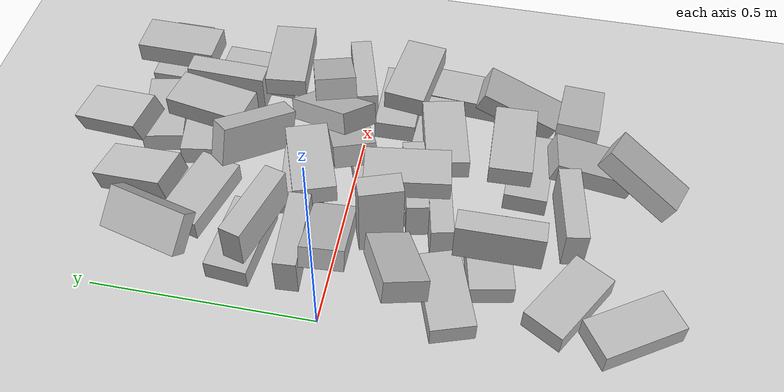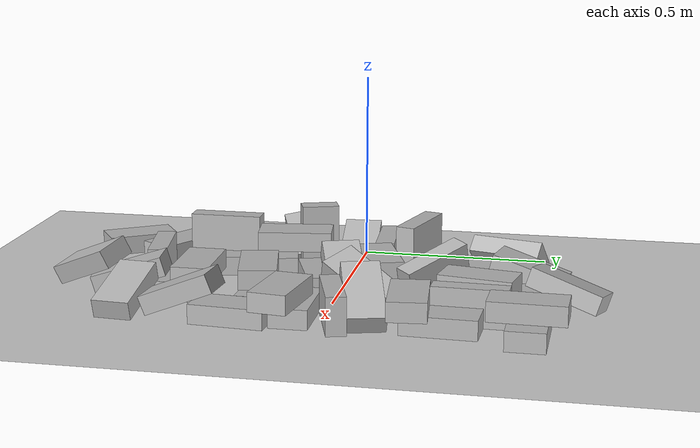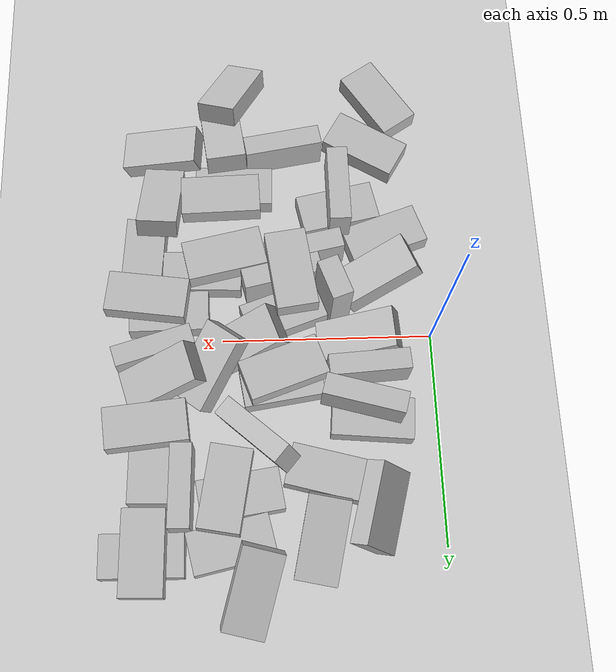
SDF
<sdf version="1.6">
 <world name="default">
  <model name="ground_plane">
   <static>1</static>
   <link name="link">
    <collision name="collision">
     <geometry><plane><normal>0 0 1</normal><size>100 100</size></plane></geometry>
     <surface>
      <contact><collide_bitmask>65535</collide_bitmask></contact>
      <friction><ode><mu>100</mu><mu2>50</mu2></ode></friction>
     </surface>
    </collision>
    <visual name="visual">
     <cast_shadows>0</cast_shadows>
     <geometry><plane><normal>0 0 1</normal><size>100 100</size></plane></geometry>
     <material>
      <script><uri>file://media/materials/scripts/gazebo.material</uri><name>Gazebo/Grey</name></script>
     </material>
    </visual>
   </link>
  </model>
  <model name="dbrick_clone_2">
   <static>0</static>
   <self_collide>1</self_collide>
   <link name="link">
    <inertial>
     <mass>2</mass>
     <inertia>
      <ixx>0.0198483</ixx>
      <ixy>0</ixy>
      <ixz>0</ixz>
      <iyy>0.0643333</iyy>
      <iyz>0</iyz>
      <izz>0.0758483</izz>
     </inertia>
    </inertial>
    <collision name="dbrickC"><geometry><box><size>0.19 0.05 0.097</size></box></geometry></collision>
    <visual name="dbrickV">
     <cast_shadows>0</cast_shadows>
     <geometry><box><size>0.19 0.05 0.097</size></box></geometry>
     <material>
      <script>
       <uri>model://dbrick/materials/scripts</uri>
       <uri>model://dbrick/materials/textures</uri>
       <name>vrc/dbrick</name>
      </script>
     </material>
    </visual>
    <self_collide>1</self_collide>
   </link>
   <pose>0.299765 -0.209694 0.0485 -4e-06 1e-06 0.200864</pose>
  </model>
  <model name="dbrick_clone_9">
   <static>0</static>
   <self_collide>1</self_collide>
   <link name="link">
    <inertial>
     <mass>2</mass>
     <inertia>
      <ixx>0.0198483</ixx>
      <ixy>0</ixy>
      <ixz>0</ixz>
      <iyy>0.0643333</iyy>
      <iyz>0</iyz>
      <izz>0.0758483</izz>
     </inertia>
    </inertial>
    <collision name="dbrickC"><geometry><box><size>0.19 0.05 0.097</size></box></geometry></collision>
    <visual name="dbrickV">
     <cast_shadows>0</cast_shadows>
     <geometry><box><size>0.19 0.05 0.097</size></box></geometry>
     <material>
      <script>
       <uri>model://dbrick/materials/scripts</uri>
       <uri>model://dbrick/materials/textures</uri>
       <name>vrc/dbrick</name>
      </script>
     </material>
    </visual>
    <self_collide>1</self_collide>
   </link>
   <pose>0.342479 -0.494706 0.0485 0 -0 0.163884</pose>
  </model>
  <model name="dbrick_clone_10_clone_3">
   <static>0</static>
   <self_collide>1</self_collide>
   <link name="link">
    <inertial>
     <mass>2</mass>
     <inertia>
      <ixx>0.0198483</ixx>
      <ixy>0</ixy>
      <ixz>0</ixz>
      <iyy>0.0643333</iyy>
      <iyz>0</iyz>
      <izz>0.0758483</izz>
     </inertia>
    </inertial>
    <collision name="dbrickC"><geometry><box><size>0.19 0.05 0.097</size></box></geometry></collision>
    <visual name="dbrickV">
     <cast_shadows>0</cast_shadows>
     <geometry><box><size>0.19 0.05 0.097</size></box></geometry>
     <material>
      <script>
       <uri>model://dbrick/materials/scripts</uri>
       <uri>model://dbrick/materials/textures</uri>
       <name>vrc/dbrick</name>
      </script>
     </material>
    </visual>
    <self_collide>1</self_collide>
   </link>
   <pose>0.154282 0.204825 0.025 -1.57079 -0 -0.08803</pose>
  </model>
  <model name="dbrick_clone_10_clone_6_clone">
   <static>0</static>
   <self_collide>1</self_collide>
   <link name="link">
    <inertial>
     <mass>2</mass>
     <inertia>
      <ixx>0.0198483</ixx>
      <ixy>0</ixy>
      <ixz>0</ixz>
      <iyy>0.0643333</iyy>
      <iyz>0</iyz>
      <izz>0.0758483</izz>
     </inertia>
    </inertial>
    <collision name="dbrickC"><geometry><box><size>0.19 0.05 0.097</size></box></geometry></collision>
    <visual name="dbrickV">
     <cast_shadows>0</cast_shadows>
     <geometry><box><size>0.19 0.05 0.097</size></box></geometry>
     <material>
      <script>
       <uri>model://dbrick/materials/scripts</uri>
       <uri>model://dbrick/materials/textures</uri>
       <name>vrc/dbrick</name>
      </script>
     </material>
    </visual>
    <self_collide>1</self_collide>
   </link>
   <pose>0.158145 0.086479 0.048471 2e-06 -1e-06 0.064436</pose>
  </model>
  <model name="dbrick_clone_10_clone_6_clone_0">
   <static>0</static>
   <self_collide>1</self_collide>
   <link name="link">
    <inertial>
     <mass>2</mass>
     <inertia>
      <ixx>0.0198483</ixx>
      <ixy>0</ixy>
      <ixz>0</ixz>
      <iyy>0.0643333</iyy>
      <iyz>0</iyz>
      <izz>0.0758483</izz>
     </inertia>
    </inertial>
    <collision name="dbrickC"><geometry><box><size>0.19 0.05 0.097</size></box></geometry></collision>
    <visual name="dbrickV">
     <cast_shadows>0</cast_shadows>
     <geometry><box><size>0.19 0.05 0.097</size></box></geometry>
     <material>
      <script>
       <uri>model://dbrick/materials/scripts</uri>
       <uri>model://dbrick/materials/textures</uri>
       <name>vrc/dbrick</name>
      </script>
     </material>
    </visual>
    <self_collide>1</self_collide>
   </link>
   <pose>0.261087 0.331677 0.024857 -1.5708 0.000137 -0.261447</pose>
  </model>
  <model name="dbrick_clone_10_clone_6_clone_1">
   <static>0</static>
   <self_collide>1</self_collide>
   <link name="link">
    <inertial>
     <mass>2</mass>
     <inertia>
      <ixx>0.0198483</ixx>
      <ixy>0</ixy>
      <ixz>0</ixz>
      <iyy>0.0643333</iyy>
      <iyz>0</iyz>
      <izz>0.0758483</izz>
     </inertia>
    </inertial>
    <collision name="dbrickC"><geometry><box><size>0.19 0.05 0.097</size></box></geometry></collision>
    <visual name="dbrickV">
     <cast_shadows>0</cast_shadows>
     <geometry><box><size>0.19 0.05 0.097</size></box></geometry>
     <material>
      <script>
       <uri>model://dbrick/materials/scripts</uri>
       <uri>model://dbrick/materials/textures</uri>
       <name>vrc/dbrick</name>
      </script>
     </material>
    </visual>
    <self_collide>1</self_collide>
   </link>
   <pose>0.09986 -0.252551 0.024997 1.5708 2.9e-05 0.324917</pose>
  </model>
  <model name="dbrick_clone_10_clone_6_clone_1_clone_0">
   <static>0</static>
   <self_collide>1</self_collide>
   <link name="link">
    <inertial>
     <mass>2</mass>
     <inertia>
      <ixx>0.0198483</ixx>
      <ixy>0</ixy>
      <ixz>0</ixz>
      <iyy>0.0643333</iyy>
      <iyz>0</iyz>
      <izz>0.0758483</izz>
     </inertia>
    </inertial>
    <collision name="dbrickC"><geometry><box><size>0.19 0.05 0.097</size></box></geometry></collision>
    <visual name="dbrickV">
     <cast_shadows>0</cast_shadows>
     <geometry><box><size>0.19 0.05 0.097</size></box></geometry>
     <material>
      <script>
       <uri>model://dbrick/materials/scripts</uri>
       <uri>model://dbrick/materials/textures</uri>
       <name>vrc/dbrick</name>
      </script>
     </material>
    </visual>
    <self_collide>1</self_collide>
   </link>
   <pose>0.354362 -0.145673 0.048498 -3.14158 -2e-05 0.220302</pose>
  </model>
  <model name="dbrick_clone_10_clone_6_clone_1_clone_1">
   <static>0</static>
   <self_collide>1</self_collide>
   <link name="link">
    <inertial>
     <mass>2</mass>
     <inertia>
      <ixx>0.0198483</ixx>
      <ixy>0</ixy>
      <ixz>0</ixz>
      <iyy>0.0643333</iyy>
      <iyz>0</iyz>
      <izz>0.0758483</izz>
     </inertia>
    </inertial>
    <collision name="dbrickC"><geometry><box><size>0.19 0.05 0.097</size></box></geometry></collision>
    <visual name="dbrickV">
     <cast_shadows>0</cast_shadows>
     <geometry><box><size>0.19 0.05 0.097</size></box></geometry>
     <material>
      <script>
       <uri>model://dbrick/materials/scripts</uri>
       <uri>model://dbrick/materials/textures</uri>
       <name>vrc/dbrick</name>
      </script>
     </material>
    </visual>
    <self_collide>1</self_collide>
   </link>
   <pose>0.125402 -0.142849 0.065373 1.74398 0.373455 0.402562</pose>
  </model>
  <model name="dbrick_clone_10_clone_6_clone_1_clone_2">
   <static>0</static>
   <self_collide>1</self_collide>
   <link name="link">
    <inertial>
     <mass>2</mass>
     <inertia>
      <ixx>0.0198483</ixx>
      <ixy>0</ixy>
      <ixz>0</ixz>
      <iyy>0.0643333</iyy>
      <iyz>0</iyz>
      <izz>0.0758483</izz>
     </inertia>
    </inertial>
    <collision name="dbrickC"><geometry><box><size>0.19 0.05 0.097</size></box></geometry></collision>
    <visual name="dbrickV">
     <cast_shadows>0</cast_shadows>
     <geometry><box><size>0.19 0.05 0.097</size></box></geometry>
     <material>
      <script>
       <uri>model://dbrick/materials/scripts</uri>
       <uri>model://dbrick/materials/textures</uri>
       <name>vrc/dbrick</name>
      </script>
     </material>
    </visual>
    <self_collide>1</self_collide>
   </link>
   <pose>0.210105 -0.329515 0.025 1.5708 0 0.203738</pose>
  </model>
  <model name="dbrick_clone_10_clone_6_clone_1_clone_3">
   <static>0</static>
   <self_collide>1</self_collide>
   <link name="link">
    <inertial>
     <mass>2</mass>
     <inertia>
      <ixx>0.0198483</ixx>
      <ixy>0</ixy>
      <ixz>0</ixz>
      <iyy>0.0643333</iyy>
      <iyz>0</iyz>
      <izz>0.0758483</izz>
     </inertia>
    </inertial>
    <collision name="dbrickC"><geometry><box><size>0.19 0.05 0.097</size></box></geometry></collision>
    <visual name="dbrickV">
     <cast_shadows>0</cast_shadows>
     <geometry><box><size>0.19 0.05 0.097</size></box></geometry>
     <material>
      <script>
       <uri>model://dbrick/materials/scripts</uri>
       <uri>model://dbrick/materials/textures</uri>
       <name>vrc/dbrick</name>
      </script>
     </material>
    </visual>
    <self_collide>1</self_collide>
   </link>
   <pose>0.178595 0.014141 0.059911 1.57079 0.398828 0.064411</pose>
  </model>
  <model name="dbrick_clone_10_clone_6_clone_1_clone_4">
   <static>0</static>
   <self_collide>1</self_collide>
   <link name="link">
    <inertial>
     <mass>2</mass>
     <inertia>
      <ixx>0.0198483</ixx>
      <ixy>0</ixy>
      <ixz>0</ixz>
      <iyy>0.0643333</iyy>
      <iyz>0</iyz>
      <izz>0.0758483</izz>
     </inertia>
    </inertial>
    <collision name="dbrickC"><geometry><box><size>0.19 0.05 0.097</size></box></geometry></collision>
    <visual name="dbrickV">
     <cast_shadows>0</cast_shadows>
     <geometry><box><size>0.19 0.05 0.097</size></box></geometry>
     <material>
      <script>
       <uri>model://dbrick/materials/scripts</uri>
       <uri>model://dbrick/materials/textures</uri>
       <name>vrc/dbrick</name>
      </script>
     </material>
    </visual>
    <self_collide>1</self_collide>
   </link>
   <pose>0.353139 -0.05945 0.025001 1.57084 1.6e-05 0.338845</pose>
  </model>
  <model name="dbrick_clone_10_clone_6_clone_1_clone_5">
   <static>0</static>
   <self_collide>1</self_collide>
   <link name="link">
    <inertial>
     <mass>2</mass>
     <inertia>
      <ixx>0.0198483</ixx>
      <ixy>0</ixy>
      <ixz>0</ixz>
      <iyy>0.0643333</iyy>
      <iyz>0</iyz>
      <izz>0.0758483</izz>
     </inertia>
    </inertial>
    <collision name="dbrickC"><geometry><box><size>0.19 0.05 0.097</size></box></geometry></collision>
    <visual name="dbrickV">
     <cast_shadows>0</cast_shadows>
     <geometry><box><size>0.19 0.05 0.097</size></box></geometry>
     <material>
      <script>
       <uri>model://dbrick/materials/scripts</uri>
       <uri>model://dbrick/materials/textures</uri>
       <name>vrc/dbrick</name>
      </script>
     </material>
    </visual>
    <self_collide>1</self_collide>
   </link>
   <pose>0.361903 0.113562 0.024998 1.57083 -0 0.151408</pose>
  </model>
  <model name="dbrick_clone_clone">
   <static>0</static>
   <self_collide>1</self_collide>
   <link name="link">
    <inertial>
     <mass>2</mass>
     <inertia>
      <ixx>0.0198483</ixx>
      <ixy>0</ixy>
      <ixz>0</ixz>
      <iyy>0.0643333</iyy>
      <iyz>0</iyz>
      <izz>0.0758483</izz>
     </inertia>
    </inertial>
    <collision name="dbrickC"><geometry><box><size>0.19 0.05 0.097</size></box></geometry></collision>
    <visual name="dbrickV">
     <cast_shadows>0</cast_shadows>
     <geometry><box><size>0.19 0.05 0.097</size></box></geometry>
     <material>
      <script>
       <uri>model://dbrick/materials/scripts</uri>
       <uri>model://dbrick/materials/textures</uri>
       <name>vrc/dbrick</name>
      </script>
     </material>
    </visual>
    <self_collide>1</self_collide>
   </link>
   <pose>0.177164 0.174103 0.098498 3.3e-05 -1.9e-05 -0.271425</pose>
  </model>
  <model name="dbrick_clone_10_clone_6_clone_1_clone_clone">
   <static>0</static>
   <self_collide>1</self_collide>
   <link name="link">
    <inertial>
     <mass>2</mass>
     <inertia>
      <ixx>0.0198483</ixx>
      <ixy>0</ixy>
      <ixz>0</ixz>
      <iyy>0.0643333</iyy>
      <iyz>0</iyz>
      <izz>0.0758483</izz>
     </inertia>
    </inertial>
    <collision name="dbrickC"><geometry><box><size>0.19 0.05 0.097</size></box></geometry></collision>
    <visual name="dbrickV">
     <cast_shadows>0</cast_shadows>
     <geometry><box><size>0.19 0.05 0.097</size></box></geometry>
     <material>
      <script>
       <uri>model://dbrick/materials/scripts</uri>
       <uri>model://dbrick/materials/textures</uri>
       <name>vrc/dbrick</name>
      </script>
     </material>
    </visual>
    <self_collide>1</self_collide>
   </link>
   <pose>0.235621 -0.087015 0.095 -1.36001 1.57079 -2.59197</pose>
  </model>
  <model name="dbrick_clone_10_clone_6_clone_1_clone_clone_0">
   <static>0</static>
   <self_collide>1</self_collide>
   <link name="link">
    <inertial>
     <mass>2</mass>
     <inertia>
      <ixx>0.0198483</ixx>
      <ixy>0</ixy>
      <ixz>0</ixz>
      <iyy>0.0643333</iyy>
      <iyz>0</iyz>
      <izz>0.0758483</izz>
     </inertia>
    </inertial>
    <collision name="dbrickC"><geometry><box><size>0.19 0.05 0.097</size></box></geometry></collision>
    <visual name="dbrickV">
     <cast_shadows>0</cast_shadows>
     <geometry><box><size>0.19 0.05 0.097</size></box></geometry>
     <material>
      <script>
       <uri>model://dbrick/materials/scripts</uri>
       <uri>model://dbrick/materials/textures</uri>
       <name>vrc/dbrick</name>
      </script>
     </material>
    </visual>
    <self_collide>1</self_collide>
   </link>
   <pose>0.333674 -0.129743 0.122005 -1.57072 -0.000911 -1.43258</pose>
  </model>
  <model name="dbrick_clone_10_clone_6_clone_1_clone_clone_4">
   <static>0</static>
   <self_collide>1</self_collide>
   <link name="link">
    <inertial>
     <mass>2</mass>
     <inertia>
      <ixx>0.0198483</ixx>
      <ixy>0</ixy>
      <ixz>0</ixz>
      <iyy>0.0643333</iyy>
      <iyz>0</iyz>
      <izz>0.0758483</izz>
     </inertia>
    </inertial>
    <collision name="dbrickC"><geometry><box><size>0.19 0.05 0.097</size></box></geometry></collision>
    <visual name="dbrickV">
     <cast_shadows>0</cast_shadows>
     <geometry><box><size>0.19 0.05 0.097</size></box></geometry>
     <material>
      <script>
       <uri>model://dbrick/materials/scripts</uri>
       <uri>model://dbrick/materials/textures</uri>
       <name>vrc/dbrick</name>
      </script>
     </material>
    </visual>
    <self_collide>1</self_collide>
   </link>
   <pose>0.490499 -0.192162 0.075001 1.57084 -3e-06 0.20945</pose>
  </model>
  <model name="dbrick_clone_10_clone_6_clone_1_clone_clone_5">
   <static>0</static>
   <self_collide>1</self_collide>
   <link name="link">
    <inertial>
     <mass>2</mass>
     <inertia>
      <ixx>0.0198483</ixx>
      <ixy>0</ixy>
      <ixz>0</ixz>
      <iyy>0.0643333</iyy>
      <iyz>0</iyz>
      <izz>0.0758483</izz>
     </inertia>
    </inertial>
    <collision name="dbrickC"><geometry><box><size>0.19 0.05 0.097</size></box></geometry></collision>
    <visual name="dbrickV">
     <cast_shadows>0</cast_shadows>
     <geometry><box><size>0.19 0.05 0.097</size></box></geometry>
     <material>
      <script>
       <uri>model://dbrick/materials/scripts</uri>
       <uri>model://dbrick/materials/textures</uri>
       <name>vrc/dbrick</name>
      </script>
     </material>
    </visual>
    <self_collide>1</self_collide>
   </link>
   <pose>0.639553 0.103845 0.068217 1.57077 0.510314 0.285097</pose>
  </model>
  <model name="dbrick_clone_14_clone">
   <static>0</static>
   <self_collide>1</self_collide>
   <link name="link">
    <inertial>
     <mass>2</mass>
     <inertia>
      <ixx>0.0198483</ixx>
      <ixy>0</ixy>
      <ixz>0</ixz>
      <iyy>0.0643333</iyy>
      <iyz>0</iyz>
      <izz>0.0758483</izz>
     </inertia>
    </inertial>
    <collision name="dbrickC"><geometry><box><size>0.19 0.05 0.097</size></box></geometry></collision>
    <visual name="dbrickV">
     <cast_shadows>0</cast_shadows>
     <geometry><box><size>0.19 0.05 0.097</size></box></geometry>
     <material>
      <script>
       <uri>model://dbrick/materials/scripts</uri>
       <uri>model://dbrick/materials/textures</uri>
       <name>vrc/dbrick</name>
      </script>
     </material>
    </visual>
    <self_collide>1</self_collide>
   </link>
   <pose>0.626777 -0.065599 0.025002 -1.57078 1.2e-05 -3.13012</pose>
  </model>
  <model name="dbrick_clone_14_clone_3">
   <static>0</static>
   <self_collide>1</self_collide>
   <link name="link">
    <inertial>
     <mass>2</mass>
     <inertia>
      <ixx>0.0198483</ixx>
      <ixy>0</ixy>
      <ixz>0</ixz>
      <iyy>0.0643333</iyy>
      <iyz>0</iyz>
      <izz>0.0758483</izz>
     </inertia>
    </inertial>
    <collision name="dbrickC"><geometry><box><size>0.19 0.05 0.097</size></box></geometry></collision>
    <visual name="dbrickV">
     <cast_shadows>0</cast_shadows>
     <geometry><box><size>0.19 0.05 0.097</size></box></geometry>
     <material>
      <script>
       <uri>model://dbrick/materials/scripts</uri>
       <uri>model://dbrick/materials/textures</uri>
       <name>vrc/dbrick</name>
      </script>
     </material>
    </visual>
    <self_collide>1</self_collide>
   </link>
   <pose>0.282232 0.47855 0.049303 -1.57113 -0.268681 -1.7835</pose>
  </model>
  <model name="dbrick_clone_14_clone_4">
   <static>0</static>
   <self_collide>1</self_collide>
   <link name="link">
    <inertial>
     <mass>2</mass>
     <inertia>
      <ixx>0.0198483</ixx>
      <ixy>0</ixy>
      <ixz>0</ixz>
      <iyy>0.0643333</iyy>
      <iyz>0</iyz>
      <izz>0.0758483</izz>
     </inertia>
    </inertial>
    <collision name="dbrickC"><geometry><box><size>0.19 0.05 0.097</size></box></geometry></collision>
    <visual name="dbrickV">
     <cast_shadows>0</cast_shadows>
     <geometry><box><size>0.19 0.05 0.097</size></box></geometry>
     <material>
      <script>
       <uri>model://dbrick/materials/scripts</uri>
       <uri>model://dbrick/materials/textures</uri>
       <name>vrc/dbrick</name>
      </script>
     </material>
    </visual>
    <self_collide>1</self_collide>
   </link>
   <pose>0.421123 0.246138 0.075047 -0.145107 0.26852 -0.764897</pose>
  </model>
  <model name="dbrick_clone_14_clone_5">
   <static>0</static>
   <self_collide>1</self_collide>
   <link name="link">
    <inertial>
     <mass>2</mass>
     <inertia>
      <ixx>0.0198483</ixx>
      <ixy>0</ixy>
      <ixz>0</ixz>
      <iyy>0.0643333</iyy>
      <iyz>0</iyz>
      <izz>0.0758483</izz>
     </inertia>
    </inertial>
    <collision name="dbrickC"><geometry><box><size>0.19 0.05 0.097</size></box></geometry></collision>
    <visual name="dbrickV">
     <cast_shadows>0</cast_shadows>
     <geometry><box><size>0.19 0.05 0.097</size></box></geometry>
     <material>
      <script>
       <uri>model://dbrick/materials/scripts</uri>
       <uri>model://dbrick/materials/textures</uri>
       <name>vrc/dbrick</name>
      </script>
     </material>
    </visual>
    <self_collide>1</self_collide>
   </link>
   <pose>0.595923 0.358489 0.0485 3.14159 -0 -1.60241</pose>
  </model>
  <model name="dbrick_clone_14_clone_7">
   <static>0</static>
   <self_collide>1</self_collide>
   <link name="link">
    <inertial>
     <mass>2</mass>
     <inertia>
      <ixx>0.0198483</ixx>
      <ixy>0</ixy>
      <ixz>0</ixz>
      <iyy>0.0643333</iyy>
      <iyz>0</iyz>
      <izz>0.0758483</izz>
     </inertia>
    </inertial>
    <collision name="dbrickC"><geometry><box><size>0.19 0.05 0.097</size></box></geometry></collision>
    <visual name="dbrickV">
     <cast_shadows>0</cast_shadows>
     <geometry><box><size>0.19 0.05 0.097</size></box></geometry>
     <material>
      <script>
       <uri>model://dbrick/materials/scripts</uri>
       <uri>model://dbrick/materials/textures</uri>
       <name>vrc/dbrick</name>
      </script>
     </material>
    </visual>
    <self_collide>1</self_collide>
   </link>
   <pose>0.688918 -0.212216 0.025 -1.5708 1e-06 -1.64546</pose>
  </model>
  <model name="dbrick_clone_13_clone_11">
   <static>0</static>
   <self_collide>1</self_collide>
   <link name="link">
    <inertial>
     <mass>2</mass>
     <inertia>
      <ixx>0.0198483</ixx>
      <ixy>0</ixy>
      <ixz>0</ixz>
      <iyy>0.0643333</iyy>
      <iyz>0</iyz>
      <izz>0.0758483</izz>
     </inertia>
    </inertial>
    <collision name="dbrickC"><geometry><box><size>0.19 0.05 0.097</size></box></geometry></collision>
    <visual name="dbrickV">
     <cast_shadows>0</cast_shadows>
     <geometry><box><size>0.19 0.05 0.097</size></box></geometry>
     <material>
      <script>
       <uri>model://dbrick/materials/scripts</uri>
       <uri>model://dbrick/materials/textures</uri>
       <name>vrc/dbrick</name>
      </script>
     </material>
    </visual>
    <self_collide>1</self_collide>
   </link>
   <pose>0.463666 0.376538 0.025001 -1.57078 -0 0.149483</pose>
  </model>
  <model name="dbrick_clone_13_clone_12">
   <static>0</static>
   <self_collide>1</self_collide>
   <link name="link">
    <inertial>
     <mass>2</mass>
     <inertia>
      <ixx>0.0198483</ixx>
      <ixy>0</ixy>
      <ixz>0</ixz>
      <iyy>0.0643333</iyy>
      <iyz>0</iyz>
      <izz>0.0758483</izz>
     </inertia>
    </inertial>
    <collision name="dbrickC"><geometry><box><size>0.19 0.05 0.097</size></box></geometry></collision>
    <visual name="dbrickV">
     <cast_shadows>0</cast_shadows>
     <geometry><box><size>0.19 0.05 0.097</size></box></geometry>
     <material>
      <script>
       <uri>model://dbrick/materials/scripts</uri>
       <uri>model://dbrick/materials/textures</uri>
       <name>vrc/dbrick</name>
      </script>
     </material>
    </visual>
    <self_collide>1</self_collide>
   </link>
   <pose>0.466486 -0.395499 0.024998 -1.57077 -7e-06 -0.036032</pose>
  </model>
  <model name="dbrick_clone_13_clone_9_clone_7">
   <static>0</static>
   <self_collide>1</self_collide>
   <link name="link">
    <inertial>
     <mass>2</mass>
     <inertia>
      <ixx>0.0198483</ixx>
      <ixy>0</ixy>
      <ixz>0</ixz>
      <iyy>0.0643333</iyy>
      <iyz>0</iyz>
      <izz>0.0758483</izz>
     </inertia>
    </inertial>
    <collision name="dbrickC"><geometry><box><size>0.19 0.05 0.097</size></box></geometry></collision>
    <visual name="dbrickV">
     <cast_shadows>0</cast_shadows>
     <geometry><box><size>0.19 0.05 0.097</size></box></geometry>
     <material>
      <script>
       <uri>model://dbrick/materials/scripts</uri>
       <uri>model://dbrick/materials/textures</uri>
       <name>vrc/dbrick</name>
      </script>
     </material>
    </visual>
    <self_collide>1</self_collide>
   </link>
   <pose>0.498223 -0.348269 0.075006 -1.57644 0.000417 0.026022</pose>
  </model>
  <model name="dbrick_clone_13_clone_9_clone_10">
   <static>0</static>
   <self_collide>1</self_collide>
   <link name="link">
    <inertial>
     <mass>2</mass>
     <inertia>
      <ixx>0.0198483</ixx>
      <ixy>0</ixy>
      <ixz>0</ixz>
      <iyy>0.0643333</iyy>
      <iyz>0</iyz>
      <izz>0.0758483</izz>
     </inertia>
    </inertial>
    <collision name="dbrickC"><geometry><box><size>0.19 0.05 0.097</size></box></geometry></collision>
    <visual name="dbrickV">
     <cast_shadows>0</cast_shadows>
     <geometry><box><size>0.19 0.05 0.097</size></box></geometry>
     <material>
      <script>
       <uri>model://dbrick/materials/scripts</uri>
       <uri>model://dbrick/materials/textures</uri>
       <name>vrc/dbrick</name>
      </script>
     </material>
    </visual>
    <self_collide>1</self_collide>
   </link>
   <pose>0.495754 0.368791 0.075001 -1.57073 -5.1e-05 1.39014</pose>
  </model>
  <model name="dbrick_clone_clone_clone_2">
   <static>0</static>
   <self_collide>1</self_collide>
   <link name="link">
    <inertial>
     <mass>2</mass>
     <inertia>
      <ixx>0.0198483</ixx>
      <ixy>0</ixy>
      <ixz>0</ixz>
      <iyy>0.0643333</iyy>
      <iyz>0</iyz>
      <izz>0.0758483</izz>
     </inertia>
    </inertial>
    <collision name="dbrickC"><geometry><box><size>0.19 0.05 0.097</size></box></geometry></collision>
    <visual name="dbrickV">
     <cast_shadows>0</cast_shadows>
     <geometry><box><size>0.19 0.05 0.097</size></box></geometry>
     <material>
      <script>
       <uri>model://dbrick/materials/scripts</uri>
       <uri>model://dbrick/materials/textures</uri>
       <name>vrc/dbrick</name>
      </script>
     </material>
    </visual>
    <self_collide>1</self_collide>
   </link>
   <pose>0.132222 -0.507252 0.025 1.5708 -0 -0.54106</pose>
  </model>
  <model name="dbrick_clone_clone_clone_3">
   <static>0</static>
   <self_collide>1</self_collide>
   <link name="link">
    <inertial>
     <mass>2</mass>
     <inertia>
      <ixx>0.0198483</ixx>
      <ixy>0</ixy>
      <ixz>0</ixz>
      <iyy>0.0643333</iyy>
      <iyz>0</iyz>
      <izz>0.0758483</izz>
     </inertia>
    </inertial>
    <collision name="dbrickC"><geometry><box><size>0.19 0.05 0.097</size></box></geometry></collision>
    <visual name="dbrickV">
     <cast_shadows>0</cast_shadows>
     <geometry><box><size>0.19 0.05 0.097</size></box></geometry>
     <material>
      <script>
       <uri>model://dbrick/materials/scripts</uri>
       <uri>model://dbrick/materials/textures</uri>
       <name>vrc/dbrick</name>
      </script>
     </material>
    </visual>
    <self_collide>1</self_collide>
   </link>
   <pose>0.212065 -0.348149 0.098501 2e-05 2.3e-05 -1.56638</pose>
  </model>
  <model name="dbrick_clone_clone_clone_4">
   <static>0</static>
   <self_collide>1</self_collide>
   <link name="link">
    <inertial>
     <mass>2</mass>
     <inertia>
      <ixx>0.0198483</ixx>
      <ixy>0</ixy>
      <ixz>0</ixz>
      <iyy>0.0643333</iyy>
      <iyz>0</iyz>
      <izz>0.0758483</izz>
     </inertia>
    </inertial>
    <collision name="dbrickC"><geometry><box><size>0.19 0.05 0.097</size></box></geometry></collision>
    <visual name="dbrickV">
     <cast_shadows>0</cast_shadows>
     <geometry><box><size>0.19 0.05 0.097</size></box></geometry>
     <material>
      <script>
       <uri>model://dbrick/materials/scripts</uri>
       <uri>model://dbrick/materials/textures</uri>
       <name>vrc/dbrick</name>
      </script>
     </material>
    </visual>
    <self_collide>1</self_collide>
   </link>
   <pose>0.646441 -0.349521 0.058757 -1.5708 0.383702 -1.64547</pose>
  </model>
  <model name="dbrick_clone_13_clone_clone_9">
   <static>0</static>
   <self_collide>1</self_collide>
   <link name="link">
    <inertial>
     <mass>2</mass>
     <inertia>
      <ixx>0.0198483</ixx>
      <ixy>0</ixy>
      <ixz>0</ixz>
      <iyy>0.0643333</iyy>
      <iyz>0</iyz>
      <izz>0.0758483</izz>
     </inertia>
    </inertial>
    <collision name="dbrickC"><geometry><box><size>0.19 0.05 0.097</size></box></geometry></collision>
    <visual name="dbrickV">
     <cast_shadows>0</cast_shadows>
     <geometry><box><size>0.19 0.05 0.097</size></box></geometry>
     <material>
      <script>
       <uri>model://dbrick/materials/scripts</uri>
       <uri>model://dbrick/materials/textures</uri>
       <name>vrc/dbrick</name>
      </script>
     </material>
    </visual>
    <self_collide>1</self_collide>
   </link>
   <pose>0.643546 -0.495668 0.050601 -1.57075 0.283777 -0.074653</pose>
  </model>
  <model name="dbrick_clone_13_clone_clone_11">
   <static>0</static>
   <self_collide>1</self_collide>
   <link name="link">
    <inertial>
     <mass>2</mass>
     <inertia>
      <ixx>0.0198483</ixx>
      <ixy>0</ixy>
      <ixz>0</ixz>
      <iyy>0.0643333</iyy>
      <iyz>0</iyz>
      <izz>0.0758483</izz>
     </inertia>
    </inertial>
    <collision name="dbrickC"><geometry><box><size>0.19 0.05 0.097</size></box></geometry></collision>
    <visual name="dbrickV">
     <cast_shadows>0</cast_shadows>
     <geometry><box><size>0.19 0.05 0.097</size></box></geometry>
     <material>
      <script>
       <uri>model://dbrick/materials/scripts</uri>
       <uri>model://dbrick/materials/textures</uri>
       <name>vrc/dbrick</name>
      </script>
     </material>
    </visual>
    <self_collide>1</self_collide>
   </link>
   <pose>0.673344 0.219436 0.075001 -1.57075 -6e-06 0.097901</pose>
  </model>
  <model name="dbrick_clone_13_clone_clone_13">
   <static>0</static>
   <self_collide>1</self_collide>
   <link name="link">
    <inertial>
     <mass>2</mass>
     <inertia>
      <ixx>0.0198483</ixx>
      <ixy>0</ixy>
      <ixz>0</ixz>
      <iyy>0.0643333</iyy>
      <iyz>0</iyz>
      <izz>0.0758483</izz>
     </inertia>
    </inertial>
    <collision name="dbrickC"><geometry><box><size>0.19 0.05 0.097</size></box></geometry></collision>
    <visual name="dbrickV">
     <cast_shadows>0</cast_shadows>
     <geometry><box><size>0.19 0.05 0.097</size></box></geometry>
     <material>
      <script>
       <uri>model://dbrick/materials/scripts</uri>
       <uri>model://dbrick/materials/textures</uri>
       <name>vrc/dbrick</name>
      </script>
     </material>
    </visual>
    <self_collide>1</self_collide>
   </link>
   <pose>0.683731 0.504059 0.024997 -1.5708 -3.5e-05 -0.007809</pose>
  </model>
  <model name="dbrick_clone_10_clone_6_clone_1_clone_clone_1_clone_1">
   <static>0</static>
   <self_collide>1</self_collide>
   <link name="link">
    <inertial>
     <mass>2</mass>
     <inertia>
      <ixx>0.0198483</ixx>
      <ixy>0</ixy>
      <ixz>0</ixz>
      <iyy>0.0643333</iyy>
      <iyz>0</iyz>
      <izz>0.0758483</izz>
     </inertia>
    </inertial>
    <collision name="dbrickC"><geometry><box><size>0.19 0.05 0.097</size></box></geometry></collision>
    <visual name="dbrickV">
     <cast_shadows>0</cast_shadows>
     <geometry><box><size>0.19 0.05 0.097</size></box></geometry>
     <material>
      <script>
       <uri>model://dbrick/materials/scripts</uri>
       <uri>model://dbrick/materials/textures</uri>
       <name>vrc/dbrick</name>
      </script>
     </material>
    </visual>
    <self_collide>1</self_collide>
   </link>
   <pose>0.357541 0.095178 0.074998 1.57083 -6e-06 0.336428</pose>
  </model>
  <model name="dbrick_0_clone">
   <static>0</static>
   <self_collide>1</self_collide>
   <link name="link">
    <inertial>
     <mass>2</mass>
     <inertia>
      <ixx>0.0198483</ixx>
      <ixy>0</ixy>
      <ixz>0</ixz>
      <iyy>0.0643333</iyy>
      <iyz>0</iyz>
      <izz>0.0758483</izz>
     </inertia>
    </inertial>
    <collision name="dbrickC"><geometry><box><size>0.19 0.05 0.097</size></box></geometry></collision>
    <visual name="dbrickV">
     <cast_shadows>0</cast_shadows>
     <geometry><box><size>0.19 0.05 0.097</size></box></geometry>
     <material>
      <script>
       <uri>model://dbrick/materials/scripts</uri>
       <uri>model://dbrick/materials/textures</uri>
       <name>vrc/dbrick</name>
      </script>
     </material>
    </visual>
    <self_collide>1</self_collide>
   </link>
   <pose>0.659237 0.033021 0.0485 -3.14159 -0 -2.85651</pose>
  </model>
  <model name="dbrick_0_clone_0">
   <static>0</static>
   <self_collide>1</self_collide>
   <link name="link">
    <inertial>
     <mass>2</mass>
     <inertia>
      <ixx>0.0198483</ixx>
      <ixy>0</ixy>
      <ixz>0</ixz>
      <iyy>0.0643333</iyy>
      <iyz>0</iyz>
      <izz>0.0758483</izz>
     </inertia>
    </inertial>
    <collision name="dbrickC"><geometry><box><size>0.19 0.05 0.097</size></box></geometry></collision>
    <visual name="dbrickV">
     <cast_shadows>0</cast_shadows>
     <geometry><box><size>0.19 0.05 0.097</size></box></geometry>
     <material>
      <script>
       <uri>model://dbrick/materials/scripts</uri>
       <uri>model://dbrick/materials/textures</uri>
       <name>vrc/dbrick</name>
      </script>
     </material>
    </visual>
    <self_collide>1</self_collide>
   </link>
   <pose>0.439335 0.585756 0.056676 -1.42102 -0.276488 -1.85854</pose>
  </model>
  <model name="dbrick_0_clone_8">
   <static>0</static>
   <self_collide>1</self_collide>
   <link name="link">
    <inertial>
     <mass>2</mass>
     <inertia>
      <ixx>0.0198483</ixx>
      <ixy>0</ixy>
      <ixz>0</ixz>
      <iyy>0.0643333</iyy>
      <iyz>0</iyz>
      <izz>0.0758483</izz>
     </inertia>
    </inertial>
    <collision name="dbrickC"><geometry><box><size>0.19 0.05 0.097</size></box></geometry></collision>
    <visual name="dbrickV">
     <cast_shadows>0</cast_shadows>
     <geometry><box><size>0.19 0.05 0.097</size></box></geometry>
     <material>
      <script>
       <uri>model://dbrick/materials/scripts</uri>
       <uri>model://dbrick/materials/textures</uri>
       <name>vrc/dbrick</name>
      </script>
     </material>
    </visual>
    <self_collide>1</self_collide>
   </link>
   <pose>0.674475 -0.091739 0.075133 -1.5708 0.001375 3.00619</pose>
  </model>
  <model name="dbrick_clone_10_clone_6_clone_2_clone_0_clone_2">
   <static>0</static>
   <self_collide>1</self_collide>
   <link name="link">
    <inertial>
     <mass>2</mass>
     <inertia>
      <ixx>0.0198483</ixx>
      <ixy>0</ixy>
      <ixz>0</ixz>
      <iyy>0.0643333</iyy>
      <iyz>0</iyz>
      <izz>0.0758483</izz>
     </inertia>
    </inertial>
    <collision name="dbrickC"><geometry><box><size>0.19 0.05 0.097</size></box></geometry></collision>
    <visual name="dbrickV">
     <cast_shadows>0</cast_shadows>
     <geometry><box><size>0.19 0.05 0.097</size></box></geometry>
     <material>
      <script>
       <uri>model://dbrick/materials/scripts</uri>
       <uri>model://dbrick/materials/textures</uri>
       <name>vrc/dbrick</name>
      </script>
     </material>
    </visual>
    <self_collide>1</self_collide>
   </link>
   <pose>0.492421 -0.53076 0.051819 1.57085 0.298301 -1.44996</pose>
  </model>
  <model name="dbrick_clone_10_clone_6_clone_2_clone_0_clone_4">
   <static>0</static>
   <self_collide>1</self_collide>
   <link name="link">
    <inertial>
     <mass>2</mass>
     <inertia>
      <ixx>0.0198483</ixx>
      <ixy>0</ixy>
      <ixz>0</ixz>
      <iyy>0.0643333</iyy>
      <iyz>0</iyz>
      <izz>0.0758483</izz>
     </inertia>
    </inertial>
    <collision name="dbrickC"><geometry><box><size>0.19 0.05 0.097</size></box></geometry></collision>
    <visual name="dbrickV">
     <cast_shadows>0</cast_shadows>
     <geometry><box><size>0.19 0.05 0.097</size></box></geometry>
     <material>
      <script>
       <uri>model://dbrick/materials/scripts</uri>
       <uri>model://dbrick/materials/textures</uri>
       <name>vrc/dbrick</name>
      </script>
     </material>
    </visual>
    <self_collide>1</self_collide>
   </link>
   <pose>0.091391 -0.642022 0.025 1.5708 0 -0.998015</pose>
  </model>
  <model name="dbrick_clone_10_clone_6_clone_1_clone_clone_6">
   <static>0</static>
   <self_collide>1</self_collide>
   <link name="link">
    <inertial>
     <mass>2</mass>
     <inertia>
      <ixx>0.0198483</ixx>
      <ixy>0</ixy>
      <ixz>0</ixz>
      <iyy>0.0643333</iyy>
      <iyz>0</iyz>
      <izz>0.0758483</izz>
     </inertia>
    </inertial>
    <collision name="dbrickC"><geometry><box><size>0.19 0.05 0.097</size></box></geometry></collision>
    <visual name="dbrickV">
     <cast_shadows>0</cast_shadows>
     <geometry><box><size>0.19 0.05 0.097</size></box></geometry>
     <material>
      <script>
       <uri>model://dbrick/materials/scripts</uri>
       <uri>model://dbrick/materials/textures</uri>
       <name>vrc/dbrick</name>
      </script>
     </material>
    </visual>
    <self_collide>1</self_collide>
   </link>
   <pose>0.546895 -0.166546 0.025 1.57079 -0 -0.041973</pose>
  </model>
  <model name="dbrick_clone_10_clone_6_clone_1_clone_clone_18">
   <static>0</static>
   <self_collide>1</self_collide>
   <link name="link">
    <inertial>
     <mass>2</mass>
     <inertia>
      <ixx>0.0198483</ixx>
      <ixy>0</ixy>
      <ixz>0</ixz>
      <iyy>0.0643333</iyy>
      <iyz>0</iyz>
      <izz>0.0758483</izz>
     </inertia>
    </inertial>
    <collision name="dbrickC"><geometry><box><size>0.19 0.05 0.097</size></box></geometry></collision>
    <visual name="dbrickV">
     <cast_shadows>0</cast_shadows>
     <geometry><box><size>0.19 0.05 0.097</size></box></geometry>
     <material>
      <script>
       <uri>model://dbrick/materials/scripts</uri>
       <uri>model://dbrick/materials/textures</uri>
       <name>vrc/dbrick</name>
      </script>
     </material>
    </visual>
    <self_collide>1</self_collide>
   </link>
   <pose>0.448025 0.021564 0.06689 1.5708 0.491697 0.338877</pose>
  </model>
  <model name="dbrick_clone_10_clone_6_clone_1_clone_clone_20">
   <static>0</static>
   <self_collide>1</self_collide>
   <link name="link">
    <inertial>
     <mass>2</mass>
     <inertia>
      <ixx>0.0198483</ixx>
      <ixy>0</ixy>
      <ixz>0</ixz>
      <iyy>0.0643333</iyy>
      <iyz>0</iyz>
      <izz>0.0758483</izz>
     </inertia>
    </inertial>
    <collision name="dbrickC"><geometry><box><size>0.19 0.05 0.097</size></box></geometry></collision>
    <visual name="dbrickV">
     <cast_shadows>0</cast_shadows>
     <geometry><box><size>0.19 0.05 0.097</size></box></geometry>
     <material>
      <script>
       <uri>model://dbrick/materials/scripts</uri>
       <uri>model://dbrick/materials/textures</uri>
       <name>vrc/dbrick</name>
      </script>
     </material>
    </visual>
    <self_collide>1</self_collide>
   </link>
   <pose>0.485132 0.484291 0.024905 1.57078 -1.5e-05 0.217331</pose>
  </model>
  <model name="dbrick_clone_10_clone_6_clone_2_clone_0_clone_3_clone_3">
   <static>0</static>
   <self_collide>1</self_collide>
   <link name="link">
    <inertial>
     <mass>2</mass>
     <inertia>
      <ixx>0.0198483</ixx>
      <ixy>0</ixy>
      <ixz>0</ixz>
      <iyy>0.0643333</iyy>
      <iyz>0</iyz>
      <izz>0.0758483</izz>
     </inertia>
    </inertial>
    <collision name="dbrickC"><geometry><box><size>0.19 0.05 0.097</size></box></geometry></collision>
    <visual name="dbrickV">
     <cast_shadows>0</cast_shadows>
     <geometry><box><size>0.19 0.05 0.097</size></box></geometry>
     <material>
      <script>
       <uri>model://dbrick/materials/scripts</uri>
       <uri>model://dbrick/materials/textures</uri>
       <name>vrc/dbrick</name>
      </script>
     </material>
    </visual>
    <self_collide>1</self_collide>
   </link>
   <pose>0.675943 0.502302 0.074997 1.57082 3.1e-05 -1.59345</pose>
  </model>
  <model name="dbrick_clone_10_clone_6_clone_2_clone_0_clone_3_clone_4">
   <static>0</static>
   <self_collide>1</self_collide>
   <link name="link">
    <inertial>
     <mass>2</mass>
     <inertia>
      <ixx>0.0198483</ixx>
      <ixy>0</ixy>
      <ixz>0</ixz>
      <iyy>0.0643333</iyy>
      <iyz>0</iyz>
      <izz>0.0758483</izz>
     </inertia>
    </inertial>
    <collision name="dbrickC"><geometry><box><size>0.19 0.05 0.097</size></box></geometry></collision>
    <visual name="dbrickV">
     <cast_shadows>0</cast_shadows>
     <geometry><box><size>0.19 0.05 0.097</size></box></geometry>
     <material>
      <script>
       <uri>model://dbrick/materials/scripts</uri>
       <uri>model://dbrick/materials/textures</uri>
       <name>vrc/dbrick</name>
      </script>
     </material>
    </visual>
    <self_collide>1</self_collide>
   </link>
   <pose>0.667545 0.296599 0.025 1.5708 -0 -1.60203</pose>
  </model>
  <model name="dbrick_clone_clone_clone_clone_1">
   <static>0</static>
   <self_collide>1</self_collide>
   <link name="link">
    <inertial>
     <mass>2</mass>
     <inertia>
      <ixx>0.0198483</ixx>
      <ixy>0</ixy>
      <ixz>0</ixz>
      <iyy>0.0643333</iyy>
      <iyz>0</iyz>
      <izz>0.0758483</izz>
     </inertia>
    </inertial>
    <collision name="dbrickC"><geometry><box><size>0.19 0.05 0.097</size></box></geometry></collision>
    <visual name="dbrickV">
     <cast_shadows>0</cast_shadows>
     <geometry><box><size>0.19 0.05 0.097</size></box></geometry>
     <material>
      <script>
       <uri>model://dbrick/materials/scripts</uri>
       <uri>model://dbrick/materials/textures</uri>
       <name>vrc/dbrick</name>
      </script>
     </material>
    </visual>
    <self_collide>1</self_collide>
   </link>
   <pose>0.529462 0.080726 0.071943 -1.86692 -0.398469 -2.1364</pose>
  </model>
  <model name="dbrick_clone_clone_clone_clone_3">
   <static>0</static>
   <self_collide>1</self_collide>
   <link name="link">
    <inertial>
     <mass>2</mass>
     <inertia>
      <ixx>0.0198483</ixx>
      <ixy>0</ixy>
      <ixz>0</ixz>
      <iyy>0.0643333</iyy>
      <iyz>0</iyz>
      <izz>0.0758483</izz>
     </inertia>
    </inertial>
    <collision name="dbrickC"><geometry><box><size>0.19 0.05 0.097</size></box></geometry></collision>
    <visual name="dbrickV">
     <cast_shadows>0</cast_shadows>
     <geometry><box><size>0.19 0.05 0.097</size></box></geometry>
     <material>
      <script>
       <uri>model://dbrick/materials/scripts</uri>
       <uri>model://dbrick/materials/textures</uri>
       <name>vrc/dbrick</name>
      </script>
     </material>
    </visual>
    <self_collide>1</self_collide>
   </link>
   <pose>0.151488 0.41407 0.052354 2.38003 -0 -1.83224</pose>
  </model>
  <model name="dbrick_clone_clone_clone_clone_5">
   <static>0</static>
   <self_collide>1</self_collide>
   <link name="link">
    <inertial>
     <mass>2</mass>
     <inertia>
      <ixx>0.0198483</ixx>
      <ixy>0</ixy>
      <ixz>0</ixz>
      <iyy>0.0643333</iyy>
      <iyz>0</iyz>
      <izz>0.0758483</izz>
     </inertia>
    </inertial>
    <collision name="dbrickC"><geometry><box><size>0.19 0.05 0.097</size></box></geometry></collision>
    <visual name="dbrickV">
     <cast_shadows>0</cast_shadows>
     <geometry><box><size>0.19 0.05 0.097</size></box></geometry>
     <material>
      <script>
       <uri>model://dbrick/materials/scripts</uri>
       <uri>model://dbrick/materials/textures</uri>
       <name>vrc/dbrick</name>
      </script>
     </material>
    </visual>
    <self_collide>1</self_collide>
   </link>
   <pose>0.468161 -0.645843 0.069192 -1.80835 0.390523 -2.01871</pose>
  </model>
 </world>
</sdf>
